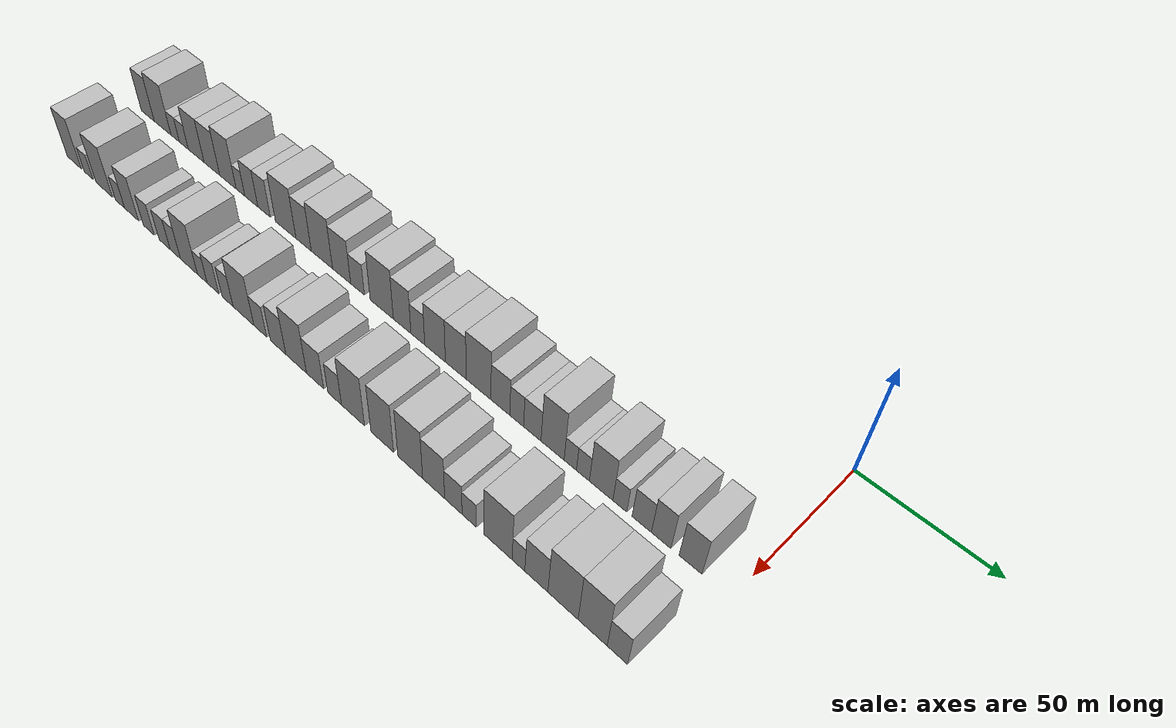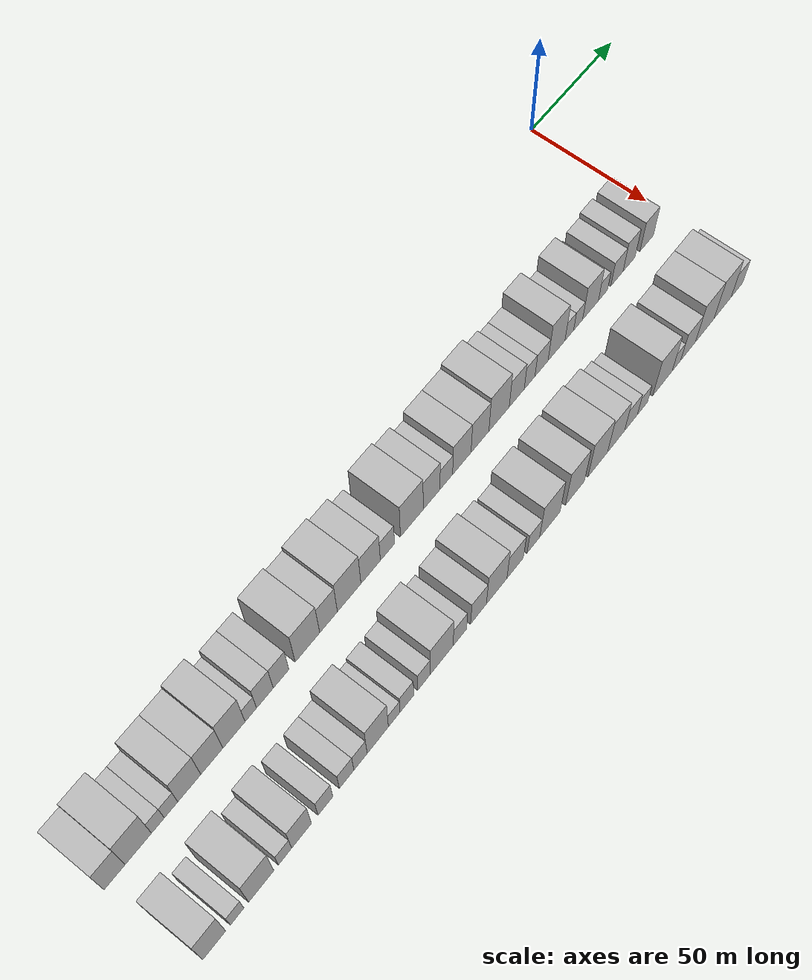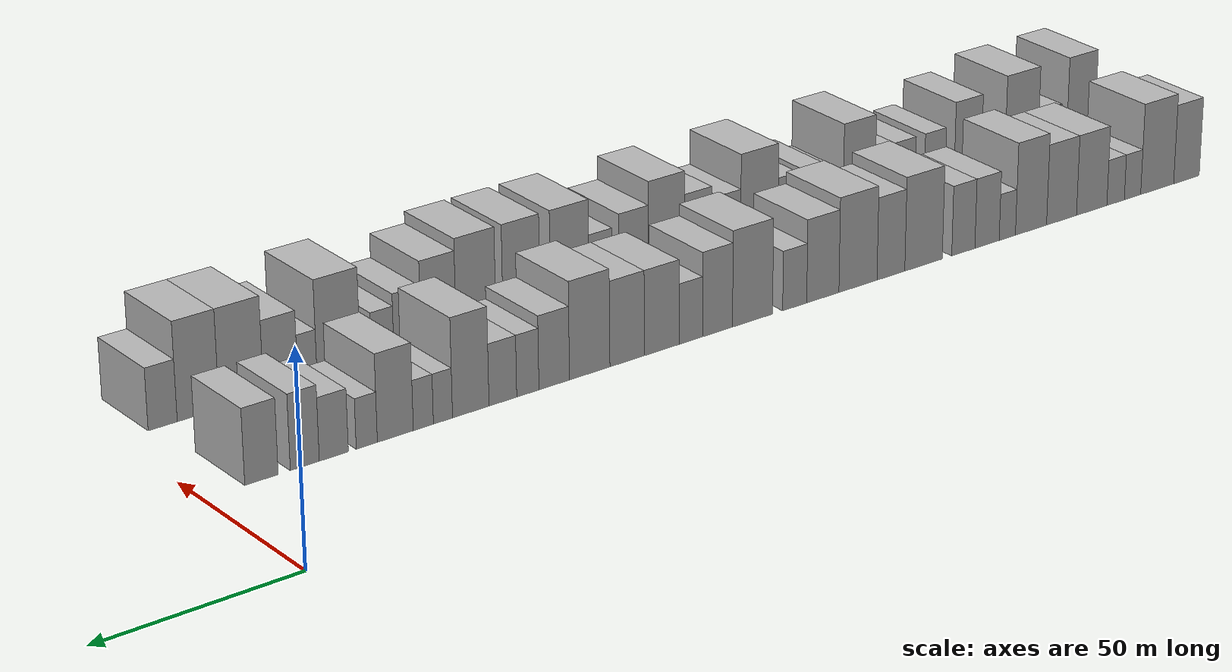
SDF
<sdf version="1.6">
 <world name="default">
  <model name="building_1">
   <static>1</static>
   <pose>50.0000 -285.5545 0 0.000000 0.000000 0.000000</pose>
   <link name="link">
    <pose>0 0 10.50 0 0 0</pose>
    <collision name="collision"><geometry><box><size>20.0000 8.8911 21.0000</size></box></geometry></collision>
    <visual name="visual">
     <cast_shadows>0</cast_shadows>
     <geometry><box><size>20.0000 8.8911 21.0000</size></box></geometry>
     <material>
      <script>
       <uri>model://HANNAS_wall/materials/scripts</uri>
       <uri>model://HANNAS_wall/materials/textures</uri>
       <name>vrc/HANNAS_wall</name>
      </script>
     </material>
    </visual>
   </link>
  </model>
  <model name="building_2">
   <static>1</static>
   <pose>50.0000 -275.4508 0 0.000000 0.000000 0.000000</pose>
   <link name="link">
    <pose>0 0 12.00 0 0 0</pose>
    <collision name="collision"><geometry><box><size>20.0000 11.3163 24.0000</size></box></geometry></collision>
    <visual name="visual">
     <cast_shadows>0</cast_shadows>
     <geometry><box><size>20.0000 11.3163 24.0000</size></box></geometry>
     <material>
      <script>
       <uri>model://HANNAS_wall/materials/scripts</uri>
       <uri>model://HANNAS_wall/materials/textures</uri>
       <name>vrc/HANNAS_wall</name>
      </script>
     </material>
    </visual>
   </link>
  </model>
  <model name="building_3">
   <static>1</static>
   <pose>50.0000 -267.0089 0 0.000000 0.000000 0.000000</pose>
   <link name="link">
    <pose>0 0 6.00 0 0 0</pose>
    <collision name="collision"><geometry><box><size>20.0000 5.5675 12.0000</size></box></geometry></collision>
    <visual name="visual">
     <cast_shadows>0</cast_shadows>
     <geometry><box><size>20.0000 5.5675 12.0000</size></box></geometry>
     <material>
      <script>
       <uri>model://HANNAS_wall/materials/scripts</uri>
       <uri>model://HANNAS_wall/materials/textures</uri>
       <name>vrc/HANNAS_wall</name>
      </script>
     </material>
    </visual>
   </link>
  </model>
  <model name="building_4">
   <static>1</static>
   <pose>50.0000 -261.2701 0 0.000000 0.000000 0.000000</pose>
   <link name="link">
    <pose>0 0 6.00 0 0 0</pose>
    <collision name="collision"><geometry><box><size>20.0000 5.9101 12.0000</size></box></geometry></collision>
    <visual name="visual">
     <cast_shadows>0</cast_shadows>
     <geometry><box><size>20.0000 5.9101 12.0000</size></box></geometry>
     <material>
      <script>
       <uri>model://HANNAS_wall/materials/scripts</uri>
       <uri>model://HANNAS_wall/materials/textures</uri>
       <name>vrc/HANNAS_wall</name>
      </script>
     </material>
    </visual>
   </link>
  </model>
  <model name="building_5">
   <static>1</static>
   <pose>50.0000 -253.2307 0 0.000000 0.000000 0.000000</pose>
   <link name="link">
    <pose>0 0 10.50 0 0 0</pose>
    <collision name="collision"><geometry><box><size>20.0000 10.1686 21.0000</size></box></geometry></collision>
    <visual name="visual">
     <cast_shadows>0</cast_shadows>
     <geometry><box><size>20.0000 10.1686 21.0000</size></box></geometry>
     <material>
      <script>
       <uri>model://HANNAS_wall/materials/scripts</uri>
       <uri>model://HANNAS_wall/materials/textures</uri>
       <name>vrc/HANNAS_wall</name>
      </script>
     </material>
    </visual>
   </link>
  </model>
  <model name="building_6">
   <static>1</static>
   <pose>50.0000 -243.1957 0 0.000000 0.000000 0.000000</pose>
   <link name="link">
    <pose>0 0 10.50 0 0 0</pose>
    <collision name="collision"><geometry><box><size>20.0000 9.9014 21.0000</size></box></geometry></collision>
    <visual name="visual">
     <cast_shadows>0</cast_shadows>
     <geometry><box><size>20.0000 9.9014 21.0000</size></box></geometry>
     <material>
      <script>
       <uri>model://HANNAS_wall/materials/scripts</uri>
       <uri>model://HANNAS_wall/materials/textures</uri>
       <name>vrc/HANNAS_wall</name>
      </script>
     </material>
    </visual>
   </link>
  </model>
  <model name="building_7">
   <static>1</static>
   <pose>50.0000 -233.1583 0 0.000000 0.000000 0.000000</pose>
   <link name="link">
    <pose>0 0 12.00 0 0 0</pose>
    <collision name="collision"><geometry><box><size>20.0000 10.1734 24.0000</size></box></geometry></collision>
    <visual name="visual">
     <cast_shadows>0</cast_shadows>
     <geometry><box><size>20.0000 10.1734 24.0000</size></box></geometry>
     <material>
      <script>
       <uri>model://HANNAS_wall/materials/scripts</uri>
       <uri>model://HANNAS_wall/materials/textures</uri>
       <name>vrc/HANNAS_wall</name>
      </script>
     </material>
    </visual>
   </link>
  </model>
  <model name="building_8">
   <static>1</static>
   <pose>50.0000 -225.4317 0 0.000000 0.000000 0.000000</pose>
   <link name="link">
    <pose>0 0 6.00 0 0 0</pose>
    <collision name="collision"><geometry><box><size>20.0000 5.2798 12.0000</size></box></geometry></collision>
    <visual name="visual">
     <cast_shadows>0</cast_shadows>
     <geometry><box><size>20.0000 5.2798 12.0000</size></box></geometry>
     <material>
      <script>
       <uri>model://HANNAS_wall/materials/scripts</uri>
       <uri>model://HANNAS_wall/materials/textures</uri>
       <name>vrc/HANNAS_wall</name>
      </script>
     </material>
    </visual>
   </link>
  </model>
  <model name="building_9">
   <static>1</static>
   <pose>50.0000 -218.8903 0 0.000000 0.000000 0.000000</pose>
   <link name="link">
    <pose>0 0 9.00 0 0 0</pose>
    <collision name="collision"><geometry><box><size>20.0000 7.8029 18.0000</size></box></geometry></collision>
    <visual name="visual">
     <cast_shadows>0</cast_shadows>
     <geometry><box><size>20.0000 7.8029 18.0000</size></box></geometry>
     <material>
      <script>
       <uri>model://HANNAS_wall/materials/scripts</uri>
       <uri>model://HANNAS_wall/materials/textures</uri>
       <name>vrc/HANNAS_wall</name>
      </script>
     </material>
    </visual>
   </link>
  </model>
  <model name="building_10">
   <static>1</static>
   <pose>50.0000 -211.3066 0 0.000000 0.000000 0.000000</pose>
   <link name="link">
    <pose>0 0 9.00 0 0 0</pose>
    <collision name="collision"><geometry><box><size>20.0000 7.3646 18.0000</size></box></geometry></collision>
    <visual name="visual">
     <cast_shadows>0</cast_shadows>
     <geometry><box><size>20.0000 7.3646 18.0000</size></box></geometry>
     <material>
      <script>
       <uri>model://HANNAS_wall/materials/scripts</uri>
       <uri>model://HANNAS_wall/materials/textures</uri>
       <name>vrc/HANNAS_wall</name>
      </script>
     </material>
    </visual>
   </link>
  </model>
  <model name="building_11">
   <static>1</static>
   <pose>50.0000 -198.7508 0 0.000000 0.000000 0.000000</pose>
   <link name="link">
    <pose>0 0 12.00 0 0 0</pose>
    <collision name="collision"><geometry><box><size>20.0000 11.7470 24.0000</size></box></geometry></collision>
    <visual name="visual">
     <cast_shadows>0</cast_shadows>
     <geometry><box><size>20.0000 11.7470 24.0000</size></box></geometry>
     <material>
      <script>
       <uri>model://HANNAS_wall/materials/scripts</uri>
       <uri>model://HANNAS_wall/materials/textures</uri>
       <name>vrc/HANNAS_wall</name>
      </script>
     </material>
    </visual>
   </link>
  </model>
  <model name="building_12">
   <static>1</static>
   <pose>50.0000 -188.5699 0 0.000000 0.000000 0.000000</pose>
   <link name="link">
    <pose>0 0 10.50 0 0 0</pose>
    <collision name="collision"><geometry><box><size>20.0000 8.6148 21.0000</size></box></geometry></collision>
    <visual name="visual">
     <cast_shadows>0</cast_shadows>
     <geometry><box><size>20.0000 8.6148 21.0000</size></box></geometry>
     <material>
      <script>
       <uri>model://HANNAS_wall/materials/scripts</uri>
       <uri>model://HANNAS_wall/materials/textures</uri>
       <name>vrc/HANNAS_wall</name>
      </script>
     </material>
    </visual>
   </link>
  </model>
  <model name="building_13">
   <static>1</static>
   <pose>50.0000 -178.4441 0 0.000000 0.000000 0.000000</pose>
   <link name="link">
    <pose>0 0 12.00 0 0 0</pose>
    <collision name="collision"><geometry><box><size>20.0000 11.6368 24.0000</size></box></geometry></collision>
    <visual name="visual">
     <cast_shadows>0</cast_shadows>
     <geometry><box><size>20.0000 11.6368 24.0000</size></box></geometry>
     <material>
      <script>
       <uri>model://HANNAS_wall/materials/scripts</uri>
       <uri>model://HANNAS_wall/materials/textures</uri>
       <name>vrc/HANNAS_wall</name>
      </script>
     </material>
    </visual>
   </link>
  </model>
  <model name="building_14">
   <static>1</static>
   <pose>50.0000 -167.7657 0 0.000000 0.000000 0.000000</pose>
   <link name="link">
    <pose>0 0 10.50 0 0 0</pose>
    <collision name="collision"><geometry><box><size>20.0000 9.7201 21.0000</size></box></geometry></collision>
    <visual name="visual">
     <cast_shadows>0</cast_shadows>
     <geometry><box><size>20.0000 9.7201 21.0000</size></box></geometry>
     <material>
      <script>
       <uri>model://HANNAS_wall/materials/scripts</uri>
       <uri>model://HANNAS_wall/materials/textures</uri>
       <name>vrc/HANNAS_wall</name>
      </script>
     </material>
    </visual>
   </link>
  </model>
  <model name="building_15">
   <static>1</static>
   <pose>50.0000 -159.3174 0 0.000000 0.000000 0.000000</pose>
   <link name="link">
    <pose>0 0 7.50 0 0 0</pose>
    <collision name="collision"><geometry><box><size>20.0000 7.1764 15.0000</size></box></geometry></collision>
    <visual name="visual">
     <cast_shadows>0</cast_shadows>
     <geometry><box><size>20.0000 7.1764 15.0000</size></box></geometry>
     <material>
      <script>
       <uri>model://HANNAS_wall/materials/scripts</uri>
       <uri>model://HANNAS_wall/materials/textures</uri>
       <name>vrc/HANNAS_wall</name>
      </script>
     </material>
    </visual>
   </link>
  </model>
  <model name="building_16">
   <static>1</static>
   <pose>50.0000 -146.8509 0 0.000000 0.000000 0.000000</pose>
   <link name="link">
    <pose>0 0 12.00 0 0 0</pose>
    <collision name="collision"><geometry><box><size>20.0000 11.7566 24.0000</size></box></geometry></collision>
    <visual name="visual">
     <cast_shadows>0</cast_shadows>
     <geometry><box><size>20.0000 11.7566 24.0000</size></box></geometry>
     <material>
      <script>
       <uri>model://HANNAS_wall/materials/scripts</uri>
       <uri>model://HANNAS_wall/materials/textures</uri>
       <name>vrc/HANNAS_wall</name>
      </script>
     </material>
    </visual>
   </link>
  </model>
  <model name="building_17">
   <static>1</static>
   <pose>50.0000 -136.6007 0 0.000000 0.000000 0.000000</pose>
   <link name="link">
    <pose>0 0 10.50 0 0 0</pose>
    <collision name="collision"><geometry><box><size>20.0000 8.7438 21.0000</size></box></geometry></collision>
    <visual name="visual">
     <cast_shadows>0</cast_shadows>
     <geometry><box><size>20.0000 8.7438 21.0000</size></box></geometry>
     <material>
      <script>
       <uri>model://HANNAS_wall/materials/scripts</uri>
       <uri>model://HANNAS_wall/materials/textures</uri>
       <name>vrc/HANNAS_wall</name>
      </script>
     </material>
    </visual>
   </link>
  </model>
  <model name="building_18">
   <static>1</static>
   <pose>50.0000 -128.8635 0 0.000000 0.000000 0.000000</pose>
   <link name="link">
    <pose>0 0 7.50 0 0 0</pose>
    <collision name="collision"><geometry><box><size>20.0000 6.7308 15.0000</size></box></geometry></collision>
    <visual name="visual">
     <cast_shadows>0</cast_shadows>
     <geometry><box><size>20.0000 6.7308 15.0000</size></box></geometry>
     <material>
      <script>
       <uri>model://HANNAS_wall/materials/scripts</uri>
       <uri>model://HANNAS_wall/materials/textures</uri>
       <name>vrc/HANNAS_wall</name>
      </script>
     </material>
    </visual>
   </link>
  </model>
  <model name="building_19">
   <static>1</static>
   <pose>50.0000 -120.5768 0 0.000000 0.000000 0.000000</pose>
   <link name="link">
    <pose>0 0 10.50 0 0 0</pose>
    <collision name="collision"><geometry><box><size>20.0000 9.8427 21.0000</size></box></geometry></collision>
    <visual name="visual">
     <cast_shadows>0</cast_shadows>
     <geometry><box><size>20.0000 9.8427 21.0000</size></box></geometry>
     <material>
      <script>
       <uri>model://HANNAS_wall/materials/scripts</uri>
       <uri>model://HANNAS_wall/materials/textures</uri>
       <name>vrc/HANNAS_wall</name>
      </script>
     </material>
    </visual>
   </link>
  </model>
  <model name="building_20">
   <static>1</static>
   <pose>50.0000 -110.8102 0 0.000000 0.000000 0.000000</pose>
   <link name="link">
    <pose>0 0 10.50 0 0 0</pose>
    <collision name="collision"><geometry><box><size>20.0000 9.6905 21.0000</size></box></geometry></collision>
    <visual name="visual">
     <cast_shadows>0</cast_shadows>
     <geometry><box><size>20.0000 9.6905 21.0000</size></box></geometry>
     <material>
      <script>
       <uri>model://HANNAS_wall/materials/scripts</uri>
       <uri>model://HANNAS_wall/materials/textures</uri>
       <name>vrc/HANNAS_wall</name>
      </script>
     </material>
    </visual>
   </link>
  </model>
  <model name="building_21">
   <static>1</static>
   <pose>50.0000 -100.3670 0 0.000000 0.000000 0.000000</pose>
   <link name="link">
    <pose>0 0 12.00 0 0 0</pose>
    <collision name="collision"><geometry><box><size>20.0000 11.1959 24.0000</size></box></geometry></collision>
    <visual name="visual">
     <cast_shadows>0</cast_shadows>
     <geometry><box><size>20.0000 11.1959 24.0000</size></box></geometry>
     <material>
      <script>
       <uri>model://HANNAS_wall/materials/scripts</uri>
       <uri>model://HANNAS_wall/materials/textures</uri>
       <name>vrc/HANNAS_wall</name>
      </script>
     </material>
    </visual>
   </link>
  </model>
  <model name="building_22">
   <static>1</static>
   <pose>50.0000 -90.5872 0 0.000000 0.000000 0.000000</pose>
   <link name="link">
    <pose>0 0 9.00 0 0 0</pose>
    <collision name="collision"><geometry><box><size>20.0000 8.3636 18.0000</size></box></geometry></collision>
    <visual name="visual">
     <cast_shadows>0</cast_shadows>
     <geometry><box><size>20.0000 8.3636 18.0000</size></box></geometry>
     <material>
      <script>
       <uri>model://HANNAS_wall/materials/scripts</uri>
       <uri>model://HANNAS_wall/materials/textures</uri>
       <name>vrc/HANNAS_wall</name>
      </script>
     </material>
    </visual>
   </link>
  </model>
  <model name="building_23">
   <static>1</static>
   <pose>50.0000 -83.3970 0 0.000000 0.000000 0.000000</pose>
   <link name="link">
    <pose>0 0 7.50 0 0 0</pose>
    <collision name="collision"><geometry><box><size>20.0000 6.0168 15.0000</size></box></geometry></collision>
    <visual name="visual">
     <cast_shadows>0</cast_shadows>
     <geometry><box><size>20.0000 6.0168 15.0000</size></box></geometry>
     <material>
      <script>
       <uri>model://HANNAS_wall/materials/scripts</uri>
       <uri>model://HANNAS_wall/materials/textures</uri>
       <name>vrc/HANNAS_wall</name>
      </script>
     </material>
    </visual>
   </link>
  </model>
  <model name="building_24">
   <static>1</static>
   <pose>50.0000 -76.6673 0 0.000000 0.000000 0.000000</pose>
   <link name="link">
    <pose>0 0 7.50 0 0 0</pose>
    <collision name="collision"><geometry><box><size>20.0000 7.4427 15.0000</size></box></geometry></collision>
    <visual name="visual">
     <cast_shadows>0</cast_shadows>
     <geometry><box><size>20.0000 7.4427 15.0000</size></box></geometry>
     <material>
      <script>
       <uri>model://HANNAS_wall/materials/scripts</uri>
       <uri>model://HANNAS_wall/materials/textures</uri>
       <name>vrc/HANNAS_wall</name>
      </script>
     </material>
    </visual>
   </link>
  </model>
  <model name="building_25">
   <static>1</static>
   <pose>50.0000 -68.0999 0 0.000000 0.000000 0.000000</pose>
   <link name="link">
    <pose>0 0 12.00 0 0 0</pose>
    <collision name="collision"><geometry><box><size>20.0000 9.6921 24.0000</size></box></geometry></collision>
    <visual name="visual">
     <cast_shadows>0</cast_shadows>
     <geometry><box><size>20.0000 9.6921 24.0000</size></box></geometry>
     <material>
      <script>
       <uri>model://HANNAS_wall/materials/scripts</uri>
       <uri>model://HANNAS_wall/materials/textures</uri>
       <name>vrc/HANNAS_wall</name>
      </script>
     </material>
    </visual>
   </link>
  </model>
  <model name="building_26">
   <static>1</static>
   <pose>50.0000 -60.7385 0 0.000000 0.000000 0.000000</pose>
   <link name="link">
    <pose>0 0 6.00 0 0 0</pose>
    <collision name="collision"><geometry><box><size>20.0000 5.0307 12.0000</size></box></geometry></collision>
    <visual name="visual">
     <cast_shadows>0</cast_shadows>
     <geometry><box><size>20.0000 5.0307 12.0000</size></box></geometry>
     <material>
      <script>
       <uri>model://HANNAS_wall/materials/scripts</uri>
       <uri>model://HANNAS_wall/materials/textures</uri>
       <name>vrc/HANNAS_wall</name>
      </script>
     </material>
    </visual>
   </link>
  </model>
  <model name="building_27">
   <static>1</static>
   <pose>50.0000 -55.6057 0 0.000000 0.000000 0.000000</pose>
   <link name="link">
    <pose>0 0 6.00 0 0 0</pose>
    <collision name="collision"><geometry><box><size>20.0000 5.2350 12.0000</size></box></geometry></collision>
    <visual name="visual">
     <cast_shadows>0</cast_shadows>
     <geometry><box><size>20.0000 5.2350 12.0000</size></box></geometry>
     <material>
      <script>
       <uri>model://HANNAS_wall/materials/scripts</uri>
       <uri>model://HANNAS_wall/materials/textures</uri>
       <name>vrc/HANNAS_wall</name>
      </script>
     </material>
    </visual>
   </link>
  </model>
  <model name="building_28">
   <static>1</static>
   <pose>50.0000 -48.3343 0 0.000000 0.000000 0.000000</pose>
   <link name="link">
    <pose>0 0 10.50 0 0 0</pose>
    <collision name="collision"><geometry><box><size>20.0000 9.3079 21.0000</size></box></geometry></collision>
    <visual name="visual">
     <cast_shadows>0</cast_shadows>
     <geometry><box><size>20.0000 9.3079 21.0000</size></box></geometry>
     <material>
      <script>
       <uri>model://HANNAS_wall/materials/scripts</uri>
       <uri>model://HANNAS_wall/materials/textures</uri>
       <name>vrc/HANNAS_wall</name>
      </script>
     </material>
    </visual>
   </link>
  </model>
  <model name="building_29">
   <static>1</static>
   <pose>50.0000 -40.9712 0 0.000000 0.000000 0.000000</pose>
   <link name="link">
    <pose>0 0 6.00 0 0 0</pose>
    <collision name="collision"><geometry><box><size>20.0000 5.4182 12.0000</size></box></geometry></collision>
    <visual name="visual">
     <cast_shadows>0</cast_shadows>
     <geometry><box><size>20.0000 5.4182 12.0000</size></box></geometry>
     <material>
      <script>
       <uri>model://HANNAS_wall/materials/scripts</uri>
       <uri>model://HANNAS_wall/materials/textures</uri>
       <name>vrc/HANNAS_wall</name>
      </script>
     </material>
    </visual>
   </link>
  </model>
  <model name="building_30">
   <static>1</static>
   <pose>50.0000 -32.5874 0 0.000000 0.000000 0.000000</pose>
   <link name="link">
    <pose>0 0 7.50 0 0 0</pose>
    <collision name="collision"><geometry><box><size>20.0000 7.3494 15.0000</size></box></geometry></collision>
    <visual name="visual">
     <cast_shadows>0</cast_shadows>
     <geometry><box><size>20.0000 7.3494 15.0000</size></box></geometry>
     <material>
      <script>
       <uri>model://HANNAS_wall/materials/scripts</uri>
       <uri>model://HANNAS_wall/materials/textures</uri>
       <name>vrc/HANNAS_wall</name>
      </script>
     </material>
    </visual>
   </link>
  </model>
  <model name="building_31">
   <static>1</static>
   <pose>50.0000 -25.2734 0 0.000000 0.000000 0.000000</pose>
   <link name="link">
    <pose>0 0 9.00 0 0 0</pose>
    <collision name="collision"><geometry><box><size>20.0000 7.2786 18.0000</size></box></geometry></collision>
    <visual name="visual">
     <cast_shadows>0</cast_shadows>
     <geometry><box><size>20.0000 7.2786 18.0000</size></box></geometry>
     <material>
      <script>
       <uri>model://HANNAS_wall/materials/scripts</uri>
       <uri>model://HANNAS_wall/materials/textures</uri>
       <name>vrc/HANNAS_wall</name>
      </script>
     </material>
    </visual>
   </link>
  </model>
  <model name="building_32">
   <static>1</static>
   <pose>50.0000 -14.4998 0 0.000000 0.000000 0.000000</pose>
   <link name="link">
    <pose>0 0 9.00 0 0 0</pose>
    <collision name="collision"><geometry><box><size>20.0000 8.2685 18.0000</size></box></geometry></collision>
    <visual name="visual">
     <cast_shadows>0</cast_shadows>
     <geometry><box><size>20.0000 8.2685 18.0000</size></box></geometry>
     <material>
      <script>
       <uri>model://HANNAS_wall/materials/scripts</uri>
       <uri>model://HANNAS_wall/materials/textures</uri>
       <name>vrc/HANNAS_wall</name>
      </script>
     </material>
    </visual>
   </link>
  </model>
  <model name="building_61">
   <static>1</static>
   <pose>85.0000 -282.0851 0 0.000000 0.000000 0.000000</pose>
   <link name="link">
    <pose>0 0 12.00 0 0 0</pose>
    <collision name="collision"><geometry><box><size>20.0000 9.8299 24.0000</size></box></geometry></collision>
    <visual name="visual">
     <cast_shadows>0</cast_shadows>
     <geometry><box><size>20.0000 9.8299 24.0000</size></box></geometry>
     <material>
      <script>
       <uri>model://HANNAS_wall/materials/scripts</uri>
       <uri>model://HANNAS_wall/materials/textures</uri>
       <name>vrc/HANNAS_wall</name>
      </script>
     </material>
    </visual>
   </link>
  </model>
  <model name="building_62">
   <static>1</static>
   <pose>85.0000 -272.2041 0 0.000000 0.000000 0.000000</pose>
   <link name="link">
    <pose>0 0 6.00 0 0 0</pose>
    <collision name="collision"><geometry><box><size>20.0000 5.9321 12.0000</size></box></geometry></collision>
    <visual name="visual">
     <cast_shadows>0</cast_shadows>
     <geometry><box><size>20.0000 5.9321 12.0000</size></box></geometry>
     <material>
      <script>
       <uri>model://HANNAS_wall/materials/scripts</uri>
       <uri>model://HANNAS_wall/materials/textures</uri>
       <name>vrc/HANNAS_wall</name>
      </script>
     </material>
    </visual>
   </link>
  </model>
  <model name="building_63">
   <static>1</static>
   <pose>85.0000 -261.6456 0 0.000000 0.000000 0.000000</pose>
   <link name="link">
    <pose>0 0 12.00 0 0 0</pose>
    <collision name="collision"><geometry><box><size>20.0000 11.1849 24.0000</size></box></geometry></collision>
    <visual name="visual">
     <cast_shadows>0</cast_shadows>
     <geometry><box><size>20.0000 11.1849 24.0000</size></box></geometry>
     <material>
      <script>
       <uri>model://HANNAS_wall/materials/scripts</uri>
       <uri>model://HANNAS_wall/materials/textures</uri>
       <name>vrc/HANNAS_wall</name>
      </script>
     </material>
    </visual>
   </link>
  </model>
  <model name="building_64">
   <static>1</static>
   <pose>85.0000 -251.0568 0 0.000000 0.000000 0.000000</pose>
   <link name="link">
    <pose>0 0 6.00 0 0 0</pose>
    <collision name="collision"><geometry><box><size>20.0000 5.9927 12.0000</size></box></geometry></collision>
    <visual name="visual">
     <cast_shadows>0</cast_shadows>
     <geometry><box><size>20.0000 5.9927 12.0000</size></box></geometry>
     <material>
      <script>
       <uri>model://HANNAS_wall/materials/scripts</uri>
       <uri>model://HANNAS_wall/materials/textures</uri>
       <name>vrc/HANNAS_wall</name>
      </script>
     </material>
    </visual>
   </link>
  </model>
  <model name="building_65">
   <static>1</static>
   <pose>85.0000 -243.5654 0 0.000000 0.000000 0.000000</pose>
   <link name="link">
    <pose>0 0 10.50 0 0 0</pose>
    <collision name="collision"><geometry><box><size>20.0000 8.9899 21.0000</size></box></geometry></collision>
    <visual name="visual">
     <cast_shadows>0</cast_shadows>
     <geometry><box><size>20.0000 8.9899 21.0000</size></box></geometry>
     <material>
      <script>
       <uri>model://HANNAS_wall/materials/scripts</uri>
       <uri>model://HANNAS_wall/materials/textures</uri>
       <name>vrc/HANNAS_wall</name>
      </script>
     </material>
    </visual>
   </link>
  </model>
  <model name="building_66">
   <static>1</static>
   <pose>85.0000 -232.6446 0 0.000000 0.000000 0.000000</pose>
   <link name="link">
    <pose>0 0 7.50 0 0 0</pose>
    <collision name="collision"><geometry><box><size>20.0000 6.8518 15.0000</size></box></geometry></collision>
    <visual name="visual">
     <cast_shadows>0</cast_shadows>
     <geometry><box><size>20.0000 6.8518 15.0000</size></box></geometry>
     <material>
      <script>
       <uri>model://HANNAS_wall/materials/scripts</uri>
       <uri>model://HANNAS_wall/materials/textures</uri>
       <name>vrc/HANNAS_wall</name>
      </script>
     </material>
    </visual>
   </link>
  </model>
  <model name="building_67">
   <static>1</static>
   <pose>85.0000 -222.8198 0 0.000000 0.000000 0.000000</pose>
   <link name="link">
    <pose>0 0 7.50 0 0 0</pose>
    <collision name="collision"><geometry><box><size>20.0000 6.7977 15.0000</size></box></geometry></collision>
    <visual name="visual">
     <cast_shadows>0</cast_shadows>
     <geometry><box><size>20.0000 6.7977 15.0000</size></box></geometry>
     <material>
      <script>
       <uri>model://HANNAS_wall/materials/scripts</uri>
       <uri>model://HANNAS_wall/materials/textures</uri>
       <name>vrc/HANNAS_wall</name>
      </script>
     </material>
    </visual>
   </link>
  </model>
  <model name="building_68">
   <static>1</static>
   <pose>85.0000 -216.2872 0 0.000000 0.000000 0.000000</pose>
   <link name="link">
    <pose>0 0 7.50 0 0 0</pose>
    <collision name="collision"><geometry><box><size>20.0000 6.2676 15.0000</size></box></geometry></collision>
    <visual name="visual">
     <cast_shadows>0</cast_shadows>
     <geometry><box><size>20.0000 6.2676 15.0000</size></box></geometry>
     <material>
      <script>
       <uri>model://HANNAS_wall/materials/scripts</uri>
       <uri>model://HANNAS_wall/materials/textures</uri>
       <name>vrc/HANNAS_wall</name>
      </script>
     </material>
    </visual>
   </link>
  </model>
  <model name="building_69">
   <static>1</static>
   <pose>85.0000 -208.0695 0 0.000000 0.000000 0.000000</pose>
   <link name="link">
    <pose>0 0 12.00 0 0 0</pose>
    <collision name="collision"><geometry><box><size>20.0000 10.1677 24.0000</size></box></geometry></collision>
    <visual name="visual">
     <cast_shadows>0</cast_shadows>
     <geometry><box><size>20.0000 10.1677 24.0000</size></box></geometry>
     <material>
      <script>
       <uri>model://HANNAS_wall/materials/scripts</uri>
       <uri>model://HANNAS_wall/materials/textures</uri>
       <name>vrc/HANNAS_wall</name>
      </script>
     </material>
    </visual>
   </link>
  </model>
  <model name="building_70">
   <static>1</static>
   <pose>85.0000 -200.1742 0 0.000000 0.000000 0.000000</pose>
   <link name="link">
    <pose>0 0 6.00 0 0 0</pose>
    <collision name="collision"><geometry><box><size>20.0000 5.6231 12.0000</size></box></geometry></collision>
    <visual name="visual">
     <cast_shadows>0</cast_shadows>
     <geometry><box><size>20.0000 5.6231 12.0000</size></box></geometry>
     <material>
      <script>
       <uri>model://HANNAS_wall/materials/scripts</uri>
       <uri>model://HANNAS_wall/materials/textures</uri>
       <name>vrc/HANNAS_wall</name>
      </script>
     </material>
    </visual>
   </link>
  </model>
  <model name="building_71">
   <static>1</static>
   <pose>85.0000 -194.0202 0 0.000000 0.000000 0.000000</pose>
   <link name="link">
    <pose>0 0 7.50 0 0 0</pose>
    <collision name="collision"><geometry><box><size>20.0000 6.6849 15.0000</size></box></geometry></collision>
    <visual name="visual">
     <cast_shadows>0</cast_shadows>
     <geometry><box><size>20.0000 6.6849 15.0000</size></box></geometry>
     <material>
      <script>
       <uri>model://HANNAS_wall/materials/scripts</uri>
       <uri>model://HANNAS_wall/materials/textures</uri>
       <name>vrc/HANNAS_wall</name>
      </script>
     </material>
    </visual>
   </link>
  </model>
  <model name="building_72">
   <static>1</static>
   <pose>85.0000 -185.6216 0 0.000000 0.000000 0.000000</pose>
   <link name="link">
    <pose>0 0 7.50 0 0 0</pose>
    <collision name="collision"><geometry><box><size>20.0000 6.1123 15.0000</size></box></geometry></collision>
    <visual name="visual">
     <cast_shadows>0</cast_shadows>
     <geometry><box><size>20.0000 6.1123 15.0000</size></box></geometry>
     <material>
      <script>
       <uri>model://HANNAS_wall/materials/scripts</uri>
       <uri>model://HANNAS_wall/materials/textures</uri>
       <name>vrc/HANNAS_wall</name>
      </script>
     </material>
    </visual>
   </link>
  </model>
  <model name="building_73">
   <static>1</static>
   <pose>85.0000 -176.8198 0 0.000000 0.000000 0.000000</pose>
   <link name="link">
    <pose>0 0 12.00 0 0 0</pose>
    <collision name="collision"><geometry><box><size>20.0000 11.4912 24.0000</size></box></geometry></collision>
    <visual name="visual">
     <cast_shadows>0</cast_shadows>
     <geometry><box><size>20.0000 11.4912 24.0000</size></box></geometry>
     <material>
      <script>
       <uri>model://HANNAS_wall/materials/scripts</uri>
       <uri>model://HANNAS_wall/materials/textures</uri>
       <name>vrc/HANNAS_wall</name>
      </script>
     </material>
    </visual>
   </link>
  </model>
  <model name="building_74">
   <static>1</static>
   <pose>85.0000 -167.6315 0 0.000000 0.000000 0.000000</pose>
   <link name="link">
    <pose>0 0 7.50 0 0 0</pose>
    <collision name="collision"><geometry><box><size>20.0000 6.8855 15.0000</size></box></geometry></collision>
    <visual name="visual">
     <cast_shadows>0</cast_shadows>
     <geometry><box><size>20.0000 6.8855 15.0000</size></box></geometry>
     <material>
      <script>
       <uri>model://HANNAS_wall/materials/scripts</uri>
       <uri>model://HANNAS_wall/materials/textures</uri>
       <name>vrc/HANNAS_wall</name>
      </script>
     </material>
    </visual>
   </link>
  </model>
  <model name="building_75">
   <static>1</static>
   <pose>85.0000 -158.1187 0 0.000000 0.000000 0.000000</pose>
   <link name="link">
    <pose>0 0 9.00 0 0 0</pose>
    <collision name="collision"><geometry><box><size>20.0000 8.1402 18.0000</size></box></geometry></collision>
    <visual name="visual">
     <cast_shadows>0</cast_shadows>
     <geometry><box><size>20.0000 8.1402 18.0000</size></box></geometry>
     <material>
      <script>
       <uri>model://HANNAS_wall/materials/scripts</uri>
       <uri>model://HANNAS_wall/materials/textures</uri>
       <name>vrc/HANNAS_wall</name>
      </script>
     </material>
    </visual>
   </link>
  </model>
  <model name="building_76">
   <static>1</static>
   <pose>85.0000 -148.6910 0 0.000000 0.000000 0.000000</pose>
   <link name="link">
    <pose>0 0 12.00 0 0 0</pose>
    <collision name="collision"><geometry><box><size>20.0000 10.7150 24.0000</size></box></geometry></collision>
    <visual name="visual">
     <cast_shadows>0</cast_shadows>
     <geometry><box><size>20.0000 10.7150 24.0000</size></box></geometry>
     <material>
      <script>
       <uri>model://HANNAS_wall/materials/scripts</uri>
       <uri>model://HANNAS_wall/materials/textures</uri>
       <name>vrc/HANNAS_wall</name>
      </script>
     </material>
    </visual>
   </link>
  </model>
  <model name="building_77">
   <static>1</static>
   <pose>85.0000 -138.9963 0 0.000000 0.000000 0.000000</pose>
   <link name="link">
    <pose>0 0 9.00 0 0 0</pose>
    <collision name="collision"><geometry><box><size>20.0000 8.6746 18.0000</size></box></geometry></collision>
    <visual name="visual">
     <cast_shadows>0</cast_shadows>
     <geometry><box><size>20.0000 8.6746 18.0000</size></box></geometry>
     <material>
      <script>
       <uri>model://HANNAS_wall/materials/scripts</uri>
       <uri>model://HANNAS_wall/materials/textures</uri>
       <name>vrc/HANNAS_wall</name>
      </script>
     </material>
    </visual>
   </link>
  </model>
  <model name="building_78">
   <static>1</static>
   <pose>85.0000 -129.2970 0 0.000000 0.000000 0.000000</pose>
   <link name="link">
    <pose>0 0 7.50 0 0 0</pose>
    <collision name="collision"><geometry><box><size>20.0000 6.7239 15.0000</size></box></geometry></collision>
    <visual name="visual">
     <cast_shadows>0</cast_shadows>
     <geometry><box><size>20.0000 6.7239 15.0000</size></box></geometry>
     <material>
      <script>
       <uri>model://HANNAS_wall/materials/scripts</uri>
       <uri>model://HANNAS_wall/materials/textures</uri>
       <name>vrc/HANNAS_wall</name>
      </script>
     </material>
    </visual>
   </link>
  </model>
  <model name="building_79">
   <static>1</static>
   <pose>85.0000 -120.3953 0 0.000000 0.000000 0.000000</pose>
   <link name="link">
    <pose>0 0 12.00 0 0 0</pose>
    <collision name="collision"><geometry><box><size>20.0000 11.0795 24.0000</size></box></geometry></collision>
    <visual name="visual">
     <cast_shadows>0</cast_shadows>
     <geometry><box><size>20.0000 11.0795 24.0000</size></box></geometry>
     <material>
      <script>
       <uri>model://HANNAS_wall/materials/scripts</uri>
       <uri>model://HANNAS_wall/materials/textures</uri>
       <name>vrc/HANNAS_wall</name>
      </script>
     </material>
    </visual>
   </link>
  </model>
  <model name="building_80">
   <static>1</static>
   <pose>85.0000 -106.6160 0 0.000000 0.000000 0.000000</pose>
   <link name="link">
    <pose>0 0 12.00 0 0 0</pose>
    <collision name="collision"><geometry><box><size>20.0000 10.4790 24.0000</size></box></geometry></collision>
    <visual name="visual">
     <cast_shadows>0</cast_shadows>
     <geometry><box><size>20.0000 10.4790 24.0000</size></box></geometry>
     <material>
      <script>
       <uri>model://HANNAS_wall/materials/scripts</uri>
       <uri>model://HANNAS_wall/materials/textures</uri>
       <name>vrc/HANNAS_wall</name>
      </script>
     </material>
    </visual>
   </link>
  </model>
  <model name="building_81">
   <static>1</static>
   <pose>85.0000 -93.8483 0 0.000000 0.000000 0.000000</pose>
   <link name="link">
    <pose>0 0 12.00 0 0 0</pose>
    <collision name="collision"><geometry><box><size>20.0000 11.0564 24.0000</size></box></geometry></collision>
    <visual name="visual">
     <cast_shadows>0</cast_shadows>
     <geometry><box><size>20.0000 11.0564 24.0000</size></box></geometry>
     <material>
      <script>
       <uri>model://HANNAS_wall/materials/scripts</uri>
       <uri>model://HANNAS_wall/materials/textures</uri>
       <name>vrc/HANNAS_wall</name>
      </script>
     </material>
    </visual>
   </link>
  </model>
  <model name="building_82">
   <static>1</static>
   <pose>85.0000 -83.5139 0 0.000000 0.000000 0.000000</pose>
   <link name="link">
    <pose>0 0 10.50 0 0 0</pose>
    <collision name="collision"><geometry><box><size>20.0000 9.6124 21.0000</size></box></geometry></collision>
    <visual name="visual">
     <cast_shadows>0</cast_shadows>
     <geometry><box><size>20.0000 9.6124 21.0000</size></box></geometry>
     <material>
      <script>
       <uri>model://HANNAS_wall/materials/scripts</uri>
       <uri>model://HANNAS_wall/materials/textures</uri>
       <name>vrc/HANNAS_wall</name>
      </script>
     </material>
    </visual>
   </link>
  </model>
  <model name="building_83">
   <static>1</static>
   <pose>85.0000 -74.9993 0 0.000000 0.000000 0.000000</pose>
   <link name="link">
    <pose>0 0 7.50 0 0 0</pose>
    <collision name="collision"><geometry><box><size>20.0000 7.4169 15.0000</size></box></geometry></collision>
    <visual name="visual">
     <cast_shadows>0</cast_shadows>
     <geometry><box><size>20.0000 7.4169 15.0000</size></box></geometry>
     <material>
      <script>
       <uri>model://HANNAS_wall/materials/scripts</uri>
       <uri>model://HANNAS_wall/materials/textures</uri>
       <name>vrc/HANNAS_wall</name>
      </script>
     </material>
    </visual>
   </link>
  </model>
  <model name="building_84">
   <static>1</static>
   <pose>85.0000 -68.2925 0 0.000000 0.000000 0.000000</pose>
   <link name="link">
    <pose>0 0 6.00 0 0 0</pose>
    <collision name="collision"><geometry><box><size>20.0000 5.9967 12.0000</size></box></geometry></collision>
    <visual name="visual">
     <cast_shadows>0</cast_shadows>
     <geometry><box><size>20.0000 5.9967 12.0000</size></box></geometry>
     <material>
      <script>
       <uri>model://HANNAS_wall/materials/scripts</uri>
       <uri>model://HANNAS_wall/materials/textures</uri>
       <name>vrc/HANNAS_wall</name>
      </script>
     </material>
    </visual>
   </link>
  </model>
  <model name="building_85">
   <static>1</static>
   <pose>85.0000 -56.5348 0 0.000000 0.000000 0.000000</pose>
   <link name="link">
    <pose>0 0 12.00 0 0 0</pose>
    <collision name="collision"><geometry><box><size>20.0000 11.5188 24.0000</size></box></geometry></collision>
    <visual name="visual">
     <cast_shadows>0</cast_shadows>
     <geometry><box><size>20.0000 11.5188 24.0000</size></box></geometry>
     <material>
      <script>
       <uri>model://HANNAS_wall/materials/scripts</uri>
       <uri>model://HANNAS_wall/materials/textures</uri>
       <name>vrc/HANNAS_wall</name>
      </script>
     </material>
    </visual>
   </link>
  </model>
  <model name="building_86">
   <static>1</static>
   <pose>85.0000 -48.2619 0 0.000000 0.000000 0.000000</pose>
   <link name="link">
    <pose>0 0 6.00 0 0 0</pose>
    <collision name="collision"><geometry><box><size>20.0000 5.0269 12.0000</size></box></geometry></collision>
    <visual name="visual">
     <cast_shadows>0</cast_shadows>
     <geometry><box><size>20.0000 5.0269 12.0000</size></box></geometry>
     <material>
      <script>
       <uri>model://HANNAS_wall/materials/scripts</uri>
       <uri>model://HANNAS_wall/materials/textures</uri>
       <name>vrc/HANNAS_wall</name>
      </script>
     </material>
    </visual>
   </link>
  </model>
  <model name="building_87">
   <static>1</static>
   <pose>85.0000 -41.2870 0 0.000000 0.000000 0.000000</pose>
   <link name="link">
    <pose>0 0 9.00 0 0 0</pose>
    <collision name="collision"><geometry><box><size>20.0000 8.9231 18.0000</size></box></geometry></collision>
    <visual name="visual">
     <cast_shadows>0</cast_shadows>
     <geometry><box><size>20.0000 8.9231 18.0000</size></box></geometry>
     <material>
      <script>
       <uri>model://HANNAS_wall/materials/scripts</uri>
       <uri>model://HANNAS_wall/materials/textures</uri>
       <name>vrc/HANNAS_wall</name>
      </script>
     </material>
    </visual>
   </link>
  </model>
  <model name="building_88">
   <static>1</static>
   <pose>85.0000 -31.1232 0 0.000000 0.000000 0.000000</pose>
   <link name="link">
    <pose>0 0 12.00 0 0 0</pose>
    <collision name="collision"><geometry><box><size>20.0000 11.4044 24.0000</size></box></geometry></collision>
    <visual name="visual">
     <cast_shadows>0</cast_shadows>
     <geometry><box><size>20.0000 11.4044 24.0000</size></box></geometry>
     <material>
      <script>
       <uri>model://HANNAS_wall/materials/scripts</uri>
       <uri>model://HANNAS_wall/materials/textures</uri>
       <name>vrc/HANNAS_wall</name>
      </script>
     </material>
    </visual>
   </link>
  </model>
  <model name="building_89">
   <static>1</static>
   <pose>85.0000 -20.1138 0 0.000000 0.000000 0.000000</pose>
   <link name="link">
    <pose>0 0 12.00 0 0 0</pose>
    <collision name="collision"><geometry><box><size>20.0000 10.6144 24.0000</size></box></geometry></collision>
    <visual name="visual">
     <cast_shadows>0</cast_shadows>
     <geometry><box><size>20.0000 10.6144 24.0000</size></box></geometry>
     <material>
      <script>
       <uri>model://HANNAS_wall/materials/scripts</uri>
       <uri>model://HANNAS_wall/materials/textures</uri>
       <name>vrc/HANNAS_wall</name>
      </script>
     </material>
    </visual>
   </link>
  </model>
  <model name="building_90">
   <static>1</static>
   <pose>85.0000 -11.1632 0 0.000000 0.000000 0.000000</pose>
   <link name="link">
    <pose>0 0 7.50 0 0 0</pose>
    <collision name="collision"><geometry><box><size>20.0000 7.2867 15.0000</size></box></geometry></collision>
    <visual name="visual">
     <cast_shadows>0</cast_shadows>
     <geometry><box><size>20.0000 7.2867 15.0000</size></box></geometry>
     <material>
      <script>
       <uri>model://HANNAS_wall/materials/scripts</uri>
       <uri>model://HANNAS_wall/materials/textures</uri>
       <name>vrc/HANNAS_wall</name>
      </script>
     </material>
    </visual>
   </link>
  </model>
 </world>
</sdf>
